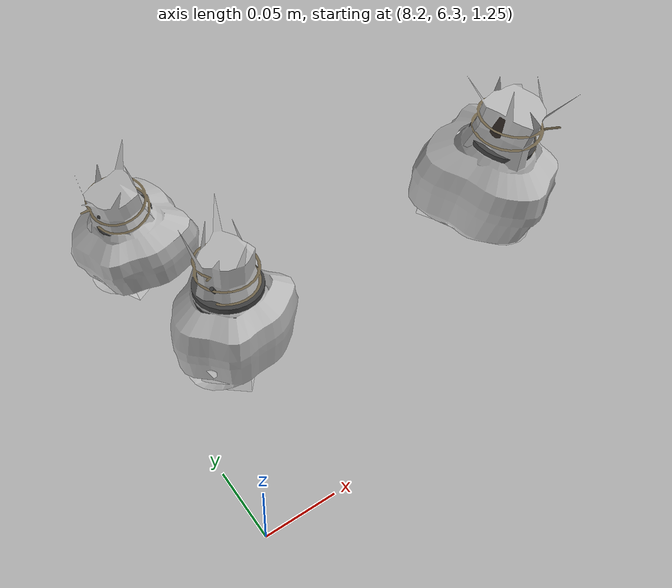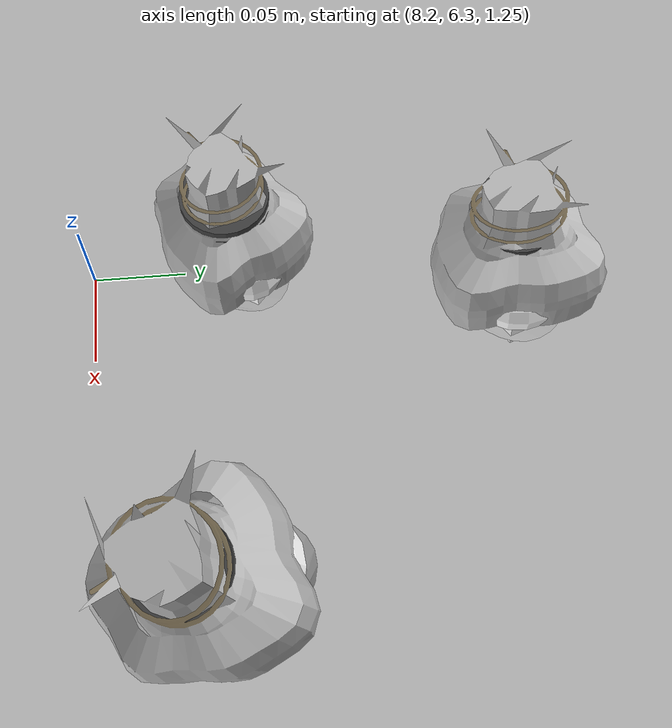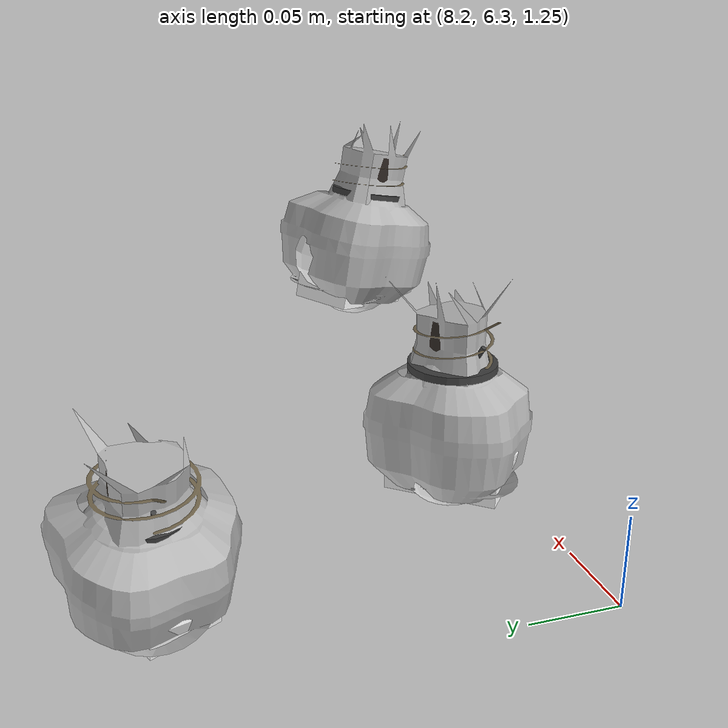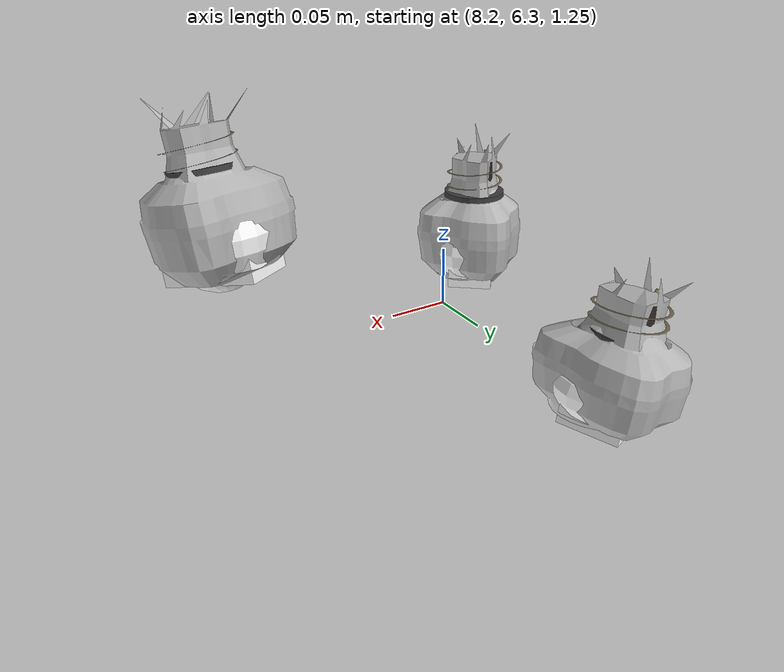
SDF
<sdf version="1.11">
 <world name="peach_orchard">
  <model name="ground">
   <static>true</static>
   <link name="link">
    <visual name="soil">
     <geometry><plane><normal>0 0 1</normal><size>32 22</size></plane></geometry>
     <material>
      <ambient>1 1 1 1</ambient>
      <diffuse>1 1 1 1</diffuse>
      <specular>0.1 0.1 0.1 1</specular>
      <pbr>
       <metal>
        <albedo_map>textures/soil_albedo.png</albedo_map>
        <normal_map type="tangent">textures/soil_normal.png</normal_map>
        <roughness>0.95</roughness>
        <metalness>0</metalness>
       </metal>
      </pbr>
     </material>
    </visual>
    <collision name="c_soil">
     <geometry><plane><normal>0 0 1</normal><size>32 22</size></plane></geometry>
    </collision>
   </link>
  </model>
  <model name="peach_tree_r4_t6_00">
   <pose>8.40723 6.3745 1.34928 0 0.200051 -1.26142</pose>
   <static>true</static>
   <link name="bag">
    <visual name="bag_mesh">
     <pose>0 0 0.0456234 0 0 -0</pose>
     <geometry>
      <mesh><uri>model://peach_sim/meshes/bagged_peach.glb</uri><scale>1.06661 1.16882 1.0369</scale></mesh>
     </geometry>
    </visual>
    <visual name="body">
     <pose>0 0 0.0276234 0 0 0</pose>
     <geometry><ellipsoid><radii>0.0399977 0.0303894 0.0298333</radii></ellipsoid></geometry>
     <material>
      <ambient>1 1 1 1</ambient>
      <diffuse>1 1 1 1</diffuse>
      <specular>0.1 0.1 0.1 1</specular>
      <pbr>
       <metal>
        <albedo_map>textures/paper_bag_albedo.png</albedo_map>
        <normal_map type="tangent">textures/paper_bag_normal.png</normal_map>
        <roughness>0.72</roughness>
        <metalness>0</metalness>
       </metal>
      </pbr>
     </material>
    </visual>
    <visual name="bottom_fold">
     <pose>0 0 0.012 0 0 0.35</pose>
     <geometry><box><size>0.0619965 0.0349478 0.022</size></box></geometry>
     <material>
      <ambient>1 1 1 1</ambient>
      <diffuse>1 1 1 1</diffuse>
      <specular>0.1 0.1 0.1 1</specular>
      <pbr>
       <metal>
        <albedo_map>textures/paper_bag_albedo.png</albedo_map>
        <normal_map type="tangent">textures/paper_bag_normal.png</normal_map>
        <roughness>0.8</roughness>
        <metalness>0</metalness>
       </metal>
      </pbr>
     </material>
    </visual>
    <visual name="fruit">
     <pose>0 0 0.0219272 0 0 0</pose>
     <geometry><sphere><radius>0.0290443</radius></sphere></geometry>
     <material>
      <ambient>1 1 1 1</ambient>
      <diffuse>1 1 1 1</diffuse>
      <specular>0.1 0.1 0.1 1</specular>
      <pbr>
       <metal>
        <albedo_map>textures/fruit_skin_albedo.png</albedo_map>
        <normal_map type="tangent">textures/fruit_skin_normal.png</normal_map>
        <roughness>0.55</roughness>
        <metalness>0</metalness>
       </metal>
      </pbr>
     </material>
    </visual>
    <visual name="neck">
     <pose>0 0 0.0642468 0 0 0</pose>
     <geometry><cylinder><radius>0.013</radius><length>0.018</length></cylinder></geometry>
     <material>
      <ambient>1 1 1 1</ambient>
      <diffuse>1 1 1 1</diffuse>
      <specular>0.1 0.1 0.1 1</specular>
      <pbr>
       <metal>
        <albedo_map>textures/paper_bag_albedo.png</albedo_map>
        <normal_map type="tangent">textures/paper_bag_normal.png</normal_map>
        <roughness>0.75</roughness>
        <metalness>0</metalness>
       </metal>
      </pbr>
     </material>
    </visual>
    <visual name="gather">
     <pose>0 0 0.0452468 0 0 0</pose>
     <geometry><cylinder><radius>0.019</radius><length>0.02</length></cylinder></geometry>
     <material>
      <ambient>1 1 1 1</ambient>
      <diffuse>1 1 1 1</diffuse>
      <specular>0.1 0.1 0.1 1</specular>
      <pbr>
       <metal>
        <albedo_map>textures/paper_bag_albedo.png</albedo_map>
        <normal_map type="tangent">textures/paper_bag_normal.png</normal_map>
        <roughness>0.8</roughness>
        <metalness>0</metalness>
       </metal>
      </pbr>
     </material>
    </visual>
    <visual name="inner_paper">
     <pose>0 0 0.0692468 0 0 0</pose>
     <geometry><cylinder><radius>0.01</radius><length>0.008</length></cylinder></geometry>
     <material>
      <ambient>0.180392 0.14902 0.133333 1</ambient>
      <diffuse>0.180392 0.14902 0.133333 1</diffuse>
      <specular>0.1 0.1 0.1 1</specular>
     </material>
    </visual>
    <visual name="wire_0">
     <pose>0 0 0.0592468 0 0 0</pose>
     <geometry><cylinder><radius>0.0205</radius><length>0.0035</length></cylinder></geometry>
     <material>
      <ambient>0.25 0.25 0.25 1</ambient>
      <diffuse>0.25 0.25 0.25 1</diffuse>
      <specular>0.1 0.1 0.1 1</specular>
     </material>
    </visual>
    <visual name="wire_1">
     <pose>0 0 0.0662468 0 0 0</pose>
     <geometry><cylinder><radius>0.0205</radius><length>0.0035</length></cylinder></geometry>
     <material>
      <ambient>0.25 0.25 0.25 1</ambient>
      <diffuse>0.25 0.25 0.25 1</diffuse>
      <specular>0.1 0.1 0.1 1</specular>
     </material>
    </visual>
    <visual name="wire_tail">
     <pose>0.01 0 0.0672468 0 0.521618 0</pose>
     <geometry><cylinder><radius>0.0012</radius><length>0.026</length></cylinder></geometry>
     <material>
      <ambient>0.25 0.25 0.25 1</ambient>
      <diffuse>0.25 0.25 0.25 1</diffuse>
      <specular>0.1 0.1 0.1 1</specular>
     </material>
    </visual>
    <collision name="c_body">
     <pose>0 0 0.0276234 0 0 0</pose>
     <geometry><cylinder><radius>0.0399977</radius><length>0.0552468</length></cylinder></geometry>
    </collision>
   </link>
  </model>
  <model name="peach_tree_r4_t6_05">
   <pose>8.23097 6.38134 1.31414 0 1.70818e-07 -2.61274</pose>
   <static>true</static>
   <link name="bag">
    <visual name="bag_mesh">
     <pose>0 0 0.0434094 0 0 -0</pose>
     <geometry>
      <mesh><uri>model://peach_sim/meshes/bagged_peach.glb</uri><scale>0.912801 0.978874 0.986578</scale></mesh>
     </geometry>
    </visual>
    <visual name="body">
     <pose>0 0 0.0254094 0 0 0</pose>
     <geometry><ellipsoid><radii>0.03423 0.0254507 0.0274422</radii></ellipsoid></geometry>
     <material>
      <ambient>1 1 1 1</ambient>
      <diffuse>1 1 1 1</diffuse>
      <specular>0.1 0.1 0.1 1</specular>
      <pbr>
       <metal>
        <albedo_map>textures/paper_bag_albedo.png</albedo_map>
        <normal_map type="tangent">textures/paper_bag_normal.png</normal_map>
        <roughness>0.72</roughness>
        <metalness>0</metalness>
       </metal>
      </pbr>
     </material>
    </visual>
    <visual name="bottom_fold">
     <pose>0 0 0.012 0 0 0.35</pose>
     <geometry><box><size>0.0530565 0.0292683 0.022</size></box></geometry>
     <material>
      <ambient>1 1 1 1</ambient>
      <diffuse>1 1 1 1</diffuse>
      <specular>0.1 0.1 0.1 1</specular>
      <pbr>
       <metal>
        <albedo_map>textures/paper_bag_albedo.png</albedo_map>
        <normal_map type="tangent">textures/paper_bag_normal.png</normal_map>
        <roughness>0.8</roughness>
        <metalness>0</metalness>
       </metal>
      </pbr>
     </material>
    </visual>
    <visual name="fruit">
     <pose>0 0 0.018748 0 0 0</pose>
     <geometry><sphere><radius>0.0257379</radius></sphere></geometry>
     <material>
      <ambient>1 1 1 1</ambient>
      <diffuse>1 1 1 1</diffuse>
      <specular>0.1 0.1 0.1 1</specular>
      <pbr>
       <metal>
        <albedo_map>textures/fruit_skin_albedo.png</albedo_map>
        <normal_map type="tangent">textures/fruit_skin_normal.png</normal_map>
        <roughness>0.55</roughness>
        <metalness>0</metalness>
       </metal>
      </pbr>
     </material>
    </visual>
    <visual name="neck">
     <pose>0 0 0.0598189 0 0 0</pose>
     <geometry><cylinder><radius>0.013</radius><length>0.018</length></cylinder></geometry>
     <material>
      <ambient>1 1 1 1</ambient>
      <diffuse>1 1 1 1</diffuse>
      <specular>0.1 0.1 0.1 1</specular>
      <pbr>
       <metal>
        <albedo_map>textures/paper_bag_albedo.png</albedo_map>
        <normal_map type="tangent">textures/paper_bag_normal.png</normal_map>
        <roughness>0.75</roughness>
        <metalness>0</metalness>
       </metal>
      </pbr>
     </material>
    </visual>
    <visual name="gather">
     <pose>0 0 0.0408189 0 0 0</pose>
     <geometry><cylinder><radius>0.019</radius><length>0.02</length></cylinder></geometry>
     <material>
      <ambient>1 1 1 1</ambient>
      <diffuse>1 1 1 1</diffuse>
      <specular>0.1 0.1 0.1 1</specular>
      <pbr>
       <metal>
        <albedo_map>textures/paper_bag_albedo.png</albedo_map>
        <normal_map type="tangent">textures/paper_bag_normal.png</normal_map>
        <roughness>0.8</roughness>
        <metalness>0</metalness>
       </metal>
      </pbr>
     </material>
    </visual>
    <visual name="inner_paper">
     <pose>0 0 0.0648189 0 0 0</pose>
     <geometry><cylinder><radius>0.01</radius><length>0.008</length></cylinder></geometry>
     <material>
      <ambient>0.180392 0.14902 0.133333 1</ambient>
      <diffuse>0.180392 0.14902 0.133333 1</diffuse>
      <specular>0.1 0.1 0.1 1</specular>
     </material>
    </visual>
    <visual name="wire_0">
     <pose>0 0 0.0548189 0 0 0</pose>
     <geometry><cylinder><radius>0.0205</radius><length>0.0035</length></cylinder></geometry>
     <material>
      <ambient>0.25 0.25 0.25 1</ambient>
      <diffuse>0.25 0.25 0.25 1</diffuse>
      <specular>0.1 0.1 0.1 1</specular>
     </material>
    </visual>
    <visual name="wire_1">
     <pose>0 0 0.0618189 0 0 0</pose>
     <geometry><cylinder><radius>0.0205</radius><length>0.0035</length></cylinder></geometry>
     <material>
      <ambient>0.25 0.25 0.25 1</ambient>
      <diffuse>0.25 0.25 0.25 1</diffuse>
      <specular>0.1 0.1 0.1 1</specular>
     </material>
    </visual>
    <visual name="wire_tail">
     <pose>0.01 0 0.0628189 0 0.521618 0</pose>
     <geometry><cylinder><radius>0.0012</radius><length>0.026</length></cylinder></geometry>
     <material>
      <ambient>0.25 0.25 0.25 1</ambient>
      <diffuse>0.25 0.25 0.25 1</diffuse>
      <specular>0.1 0.1 0.1 1</specular>
     </material>
    </visual>
    <collision name="c_body">
     <pose>0 0 0.0254094 0 0 0</pose>
     <geometry><cylinder><radius>0.03423</radius><length>0.0508189</length></cylinder></geometry>
    </collision>
   </link>
  </model>
  <model name="peach_tree_r4_t6_06">
   <pose>8.23639 6.52336 1.27513 0 0.188049 -3.07049</pose>
   <static>true</static>
   <link name="bag">
    <visual name="bag_mesh">
     <pose>0 0 0.0391519 0 0 -0</pose>
     <geometry>
      <mesh><uri>model://peach_sim/meshes/bagged_peach.glb</uri><scale>1.04592 1.23108 0.889815</scale></mesh>
     </geometry>
    </visual>
    <visual name="body">
     <pose>0 0 0.0211519 0 0 0</pose>
     <geometry><ellipsoid><radii>0.039222 0.032008 0.022844</radii></ellipsoid></geometry>
     <material>
      <ambient>1 1 1 1</ambient>
      <diffuse>1 1 1 1</diffuse>
      <specular>0.1 0.1 0.1 1</specular>
      <pbr>
       <metal>
        <albedo_map>textures/paper_bag_albedo.png</albedo_map>
        <normal_map type="tangent">textures/paper_bag_normal.png</normal_map>
        <roughness>0.72</roughness>
        <metalness>0</metalness>
       </metal>
      </pbr>
     </material>
    </visual>
    <visual name="bottom_fold">
     <pose>0 0 0.012 0 0 0.35</pose>
     <geometry><box><size>0.0607941 0.0368092 0.022</size></box></geometry>
     <material>
      <ambient>1 1 1 1</ambient>
      <diffuse>1 1 1 1</diffuse>
      <specular>0.1 0.1 0.1 1</specular>
      <pbr>
       <metal>
        <albedo_map>textures/paper_bag_albedo.png</albedo_map>
        <normal_map type="tangent">textures/paper_bag_normal.png</normal_map>
        <roughness>0.8</roughness>
        <metalness>0</metalness>
       </metal>
      </pbr>
     </material>
    </visual>
    <visual name="fruit">
     <pose>0 0 0.0203265 0 0 0</pose>
     <geometry><sphere><radius>0.0273796</radius></sphere></geometry>
     <material>
      <ambient>1 1 1 1</ambient>
      <diffuse>1 1 1 1</diffuse>
      <specular>0.1 0.1 0.1 1</specular>
      <pbr>
       <metal>
        <albedo_map>textures/fruit_skin_albedo.png</albedo_map>
        <normal_map type="tangent">textures/fruit_skin_normal.png</normal_map>
        <roughness>0.55</roughness>
        <metalness>0</metalness>
       </metal>
      </pbr>
     </material>
    </visual>
    <visual name="neck">
     <pose>0 0 0.0513037 0 0 0</pose>
     <geometry><cylinder><radius>0.013</radius><length>0.018</length></cylinder></geometry>
     <material>
      <ambient>1 1 1 1</ambient>
      <diffuse>1 1 1 1</diffuse>
      <specular>0.1 0.1 0.1 1</specular>
      <pbr>
       <metal>
        <albedo_map>textures/paper_bag_albedo.png</albedo_map>
        <normal_map type="tangent">textures/paper_bag_normal.png</normal_map>
        <roughness>0.75</roughness>
        <metalness>0</metalness>
       </metal>
      </pbr>
     </material>
    </visual>
    <visual name="gather">
     <pose>0 0 0.0323037 0 0 0</pose>
     <geometry><cylinder><radius>0.019</radius><length>0.02</length></cylinder></geometry>
     <material>
      <ambient>1 1 1 1</ambient>
      <diffuse>1 1 1 1</diffuse>
      <specular>0.1 0.1 0.1 1</specular>
      <pbr>
       <metal>
        <albedo_map>textures/paper_bag_albedo.png</albedo_map>
        <normal_map type="tangent">textures/paper_bag_normal.png</normal_map>
        <roughness>0.8</roughness>
        <metalness>0</metalness>
       </metal>
      </pbr>
     </material>
    </visual>
    <visual name="inner_paper">
     <pose>0 0 0.0563037 0 0 0</pose>
     <geometry><cylinder><radius>0.01</radius><length>0.008</length></cylinder></geometry>
     <material>
      <ambient>0.180392 0.14902 0.133333 1</ambient>
      <diffuse>0.180392 0.14902 0.133333 1</diffuse>
      <specular>0.1 0.1 0.1 1</specular>
     </material>
    </visual>
    <visual name="wire_0">
     <pose>0 0 0.0463037 0 0 0</pose>
     <geometry><cylinder><radius>0.0205</radius><length>0.0035</length></cylinder></geometry>
     <material>
      <ambient>0.25 0.25 0.25 1</ambient>
      <diffuse>0.25 0.25 0.25 1</diffuse>
      <specular>0.1 0.1 0.1 1</specular>
     </material>
    </visual>
    <visual name="wire_1">
     <pose>0 0 0.0533037 0 0 0</pose>
     <geometry><cylinder><radius>0.0205</radius><length>0.0035</length></cylinder></geometry>
     <material>
      <ambient>0.25 0.25 0.25 1</ambient>
      <diffuse>0.25 0.25 0.25 1</diffuse>
      <specular>0.1 0.1 0.1 1</specular>
     </material>
    </visual>
    <visual name="wire_tail">
     <pose>0.01 0 0.0543037 0 0.521618 0</pose>
     <geometry><cylinder><radius>0.0012</radius><length>0.026</length></cylinder></geometry>
     <material>
      <ambient>0.25 0.25 0.25 1</ambient>
      <diffuse>0.25 0.25 0.25 1</diffuse>
      <specular>0.1 0.1 0.1 1</specular>
     </material>
    </visual>
    <collision name="c_body">
     <pose>0 0 0.0211519 0 0 0</pose>
     <geometry><cylinder><radius>0.039222</radius><length>0.0423037</length></cylinder></geometry>
    </collision>
   </link>
  </model>
 </world>
</sdf>
